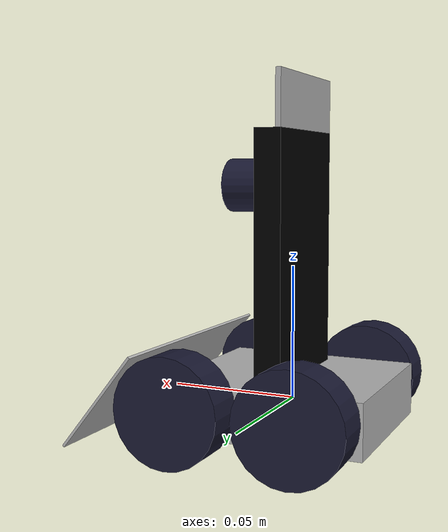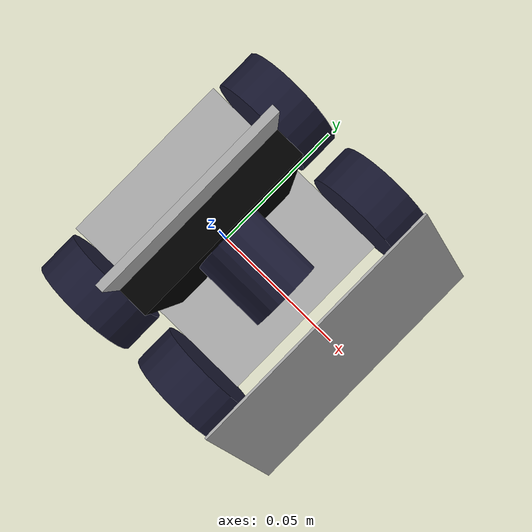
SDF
<?xml version="1.0" ?>
<sdf version="1.5">

  <model name="pushbot">
    <pose>0 0 0 0 0 0</pose>
    <static>false</static>

    <!-- Body: Main Chassis -->
    <link name="chassis">
      <pose>0 0 0 0 0 0</pose>
      <inertial>
        <mass>130</mass>
        <!-- for a box: ixx = 0.083 * mass * (y*y + z*z)
                        iyy = 0.083 * mass * (x*x + z*z)
                        izz = 0.083 * mass * (x*x + y*y) -->
        <inertia>
          <ixx>1</ixx>
          <ixy>0</ixy>
          <ixz>0</ixz>
          <iyy>1</iyy>
          <iyz>0</iyz>
          <izz>1</izz>
        </inertia>
      </inertial>
      <collision name="collision">
        <geometry>
          <box>
            <size>0.075 0.065 0.02</size>
          </box>
        </geometry>
      </collision>
      <visual name="chassis">
        <geometry>
          <box>
            <size>0.075 0.065 0.02</size>
          </box>
        </geometry>
      </visual>
    </link>

    <!-- Body: Vertical controller PCB -->
    <link name="top">
      <pose>0 0 0.055 0 0 0</pose>
      <inertial>
        <mass>60</mass>
        <!-- for a box: ixx = 0.083 * mass * (y*y + z*z)
                        iyy = 0.083 * mass * (x*x + z*z)
                        izz = 0.083 * mass * (x*x + y*y) -->
        <inertia>
          <ixx>1</ixx>
          <ixy>0.0</ixy>
          <ixz>0.0</ixz>
          <iyy>1</iyy>
          <iyz>0.0</iyz>
          <izz>1</izz>
        </inertia>
      </inertial>
      <collision name="collision">
        <geometry>
          <box>
            <size>0.01 0.05 0.09</size>
          </box>
        </geometry>
      </collision>
      <visual name="top">
        <geometry>
          <box>
            <size>0.01 0.05 0.09</size>
          </box>
        </geometry>
        <material>
          <ambient>0 0 0 1</ambient>
          <diffuse>0 0 0 1</diffuse>
          <specular>0 0 0 1</specular>
          <emissive>0 1 0.5 1</emissive>
        </material>
      </visual>
    </link>

    <joint name="chassis2top" type="fixed">
      <parent>chassis</parent>
      <child>top</child>
    </joint>

    <!-- Body: Top LED PCB -->
    <link name="led_top">
      <pose> -0.004 0 0.11 0 0 0</pose>
      <collision name="collision">
        <geometry>
          <box>
            <size>0.002 0.05 0.02</size>
          </box>
        </geometry>
      </collision>
      <visual name="led_top">
        <geometry>
          <box>
            <size>0.002 0.05 0.02</size>
          </box>
        </geometry>
      </visual>
    </link>

    <joint name="led_top_joint" type="fixed">
      <parent>top</parent>
      <child>led_top</child>
    </joint>

    <!-- Body: Front Plate -->
    <link name="front">
      <pose> 0.055 0 0.004 0 0 0</pose>
      <inertial>
        <mass>10</mass>
        <inertia>
          <ixx>1</ixx>
          <ixy>0.0</ixy>
          <ixz>0.0</ixz>
          <iyy>1</iyy>
          <iyz>0.0</iyz>
          <izz>1</izz>
        </inertia>
      </inertial>
      <collision name="collision">
        <pose>0 0 0 0 -0.68 0</pose>
        <geometry>
          <box>
            <size>0.001 0.1 0.045</size>
          </box>
        </geometry>
      </collision>
      <visual name="front">
        <pose>0 0 0 0 -0.68 0</pose>
        <geometry>
          <box>
            <size>0.001 0.1 0.045</size>
          </box>
        </geometry>
      </visual>
    </link>

    <joint name="chassis2front" type="fixed">
      <parent>chassis</parent>
      <child>front</child>
    </joint>

    <!-- Back Left Wheel -->
    <link name="back_left_wheel">
      <pose> -0.0175 0.0425 0.003 0 0 0</pose>
      <inertial>
        <mass>25</mass>-->
        <!-- for a solid cylinder, along y-axis: ixx = izz = 0.083 * mass * (3*r*r + l*l)
                                                 iyy = 0.5 * mass * r*r -->
        <inertia>
          <ixx>1</ixx>
          <ixy>0</ixy>
          <ixz>0</ixz>
          <iyy>1</iyy>
          <iyz>0</iyz>
          <izz>1</izz>
        </inertia>
      </inertial>
      <collision name="collision">
        <pose>0 0 0 -1.5707 0 0</pose>
        <geometry>
          <cylinder>
            <radius>0.02</radius>
            <length>0.015</length>
          </cylinder>
        </geometry>
        <surface>
          <friction>
            <ode>
              <mu>1.0</mu>
              <mu2>1.0</mu2>
              <slip1>0.0</slip1>
              <slip2>0.0</slip2>
            </ode>
          </friction>
        </surface>
      </collision>
      <visual name="back_left_wheel">
        <pose>0 0 0 -1.5707 0 0</pose>
        <geometry>
          <cylinder>
            <radius>0.02</radius>
            <length>0.015</length>
          </cylinder>
        </geometry>
        <material>
          <ambient>0.1 0.1 0.1 1</ambient>
          <diffuse>0.1 0.1 0.2 1</diffuse>
          <specular>0 0 0 0</specular>
          <emissive>0 0 0 1</emissive>
        </material>
      </visual>
    </link>

    <joint name="back_left_joint" type="revolute">
      <parent>chassis</parent>
      <child>back_left_wheel</child>
      <axis>
      <xyz>0 1 0</xyz>
      </axis>
    </joint>

    <!-- Back Right Wheel -->
    <link name="back_right_wheel">
      <pose> -0.0175 -0.0425 0.003 0 0 0</pose>
      <inertial>
        <mass>25</mass>
        <!-- for a solid cylinder, along y-axis: ixx = izz = 0.083 * mass * (3*r*r + l*l)
                                                 iyy = 0.5 * mass * r*r -->
        <inertia>
          <ixx>1</ixx>
          <ixy>0</ixy>
          <ixz>0</ixz>
          <iyy>1</iyy>
          <iyz>0</iyz>
          <izz>1</izz>
        </inertia>
      </inertial>
      <collision name="collision">
        <pose>0 0 0 -1.5707 0 0</pose>
        <geometry>
          <cylinder>
            <radius>0.02</radius>
            <length>0.015</length>
          </cylinder>
        </geometry>
        <surface>
          <friction>
            <ode>
              <mu>1.0</mu>
              <mu2>1.0</mu2>
              <slip1>0.0</slip1>
              <slip2>0.0</slip2>
            </ode>
          </friction>
        </surface>
      </collision>
      <visual name="back_right_wheel">
        <pose>0 0 0 -1.5707 0 0</pose>
        <geometry>
          <cylinder>
            <radius>0.02</radius>
            <length>0.015</length>
          </cylinder>
        </geometry>
        <material>
          <ambient>0.1 0.1 0.1 1</ambient>
          <diffuse>0.1 0.1 0.2 1</diffuse>
          <specular>0 0 0 0</specular>
          <emissive>0 0 0 1</emissive>
        </material>
      </visual>
    </link>

    <joint name="back_right_joint" type="revolute">
      <parent>chassis</parent>
      <child>back_right_wheel</child>
      <axis>
      <xyz>0 1 0</xyz>
      </axis>
    </joint>

    <!-- Front Left Wheel -->
    <link name="front_left_wheel">
      <pose> 0.0275 0.0425 0.003 0 0 0</pose>
      <inertial>
        <mass>25</mass>
        <!-- for a solid cylinder, along y-axis: ixx = izz = 0.083 * mass * (3*r*r + l*l)
                                                 iyy = 0.5 * mass * r*r -->
        <inertia>
          <ixx>1</ixx>
          <ixy>0</ixy>
          <ixz>0</ixz>
          <iyy>1</iyy>
          <iyz>0</iyz>
          <izz>1</izz>
        </inertia>
      </inertial>
      <collision name="collision">
        <pose>0 0 0 -1.5707 0 0</pose>
        <geometry>
          <cylinder>
            <radius>0.02</radius>
            <length>0.015</length>
          </cylinder>
        </geometry>
        <surface>
          <friction>
            <ode>
              <mu>1.0</mu>
              <mu2>1.0</mu2>
              <slip1>0.0</slip1>
              <slip2>0.0</slip2>
            </ode>
          </friction>
        </surface>
      </collision>
      <visual name="front_left_wheel">
        <pose>0 0 0 -1.5707 0 0</pose>
        <geometry>
          <cylinder>
            <radius>0.02</radius>
            <length>0.015</length>
          </cylinder>
        </geometry>
        <material>
          <ambient>0.1 0.1 0.1 1</ambient>
          <diffuse>0.1 0.1 0.2 1</diffuse>
          <specular>0 0 0 0</specular>
          <emissive>0 0 0 1</emissive>
        </material>
      </visual>
    </link>

    <joint name="front_left_joint" type="revolute">
      <parent>chassis</parent>
      <child>front_left_wheel</child>
      <axis>
      <xyz>0 1 0</xyz>
      </axis>
    </joint>

    <!-- Front Right Wheel -->
    <link name="front_right_wheel">
      <pose> 0.0275 -0.0425 0.003 0 0 0</pose>
      <inertial>
        <mass>25</mass>
        <!-- for a solid cylinder, along y-axis: ixx = izz = 0.083 * mass * (3*r*r + l*l)
                                                 iyy = 0.5 * mass * r*r -->
        <inertia>
          <ixx>1</ixx>
          <ixy>0</ixy>
          <ixz>0</ixz>
          <iyy>1</iyy>
          <iyz>0</iyz>
          <izz>1</izz>
        </inertia>
      </inertial>
      <collision name="collision">
        <pose>0 0 0 -1.5707 0 0</pose>
        <geometry>
          <cylinder>
            <radius>0.02</radius>
            <length>0.015</length>
          </cylinder>
        </geometry>
        <surface>
          <friction>
            <ode>
              <mu>1.0</mu>
              <mu2>1.0</mu2>
              <slip1>0.0</slip1>
              <slip2>0.0</slip2>
            </ode>
          </friction>
        </surface>
      </collision>
      <visual name="front_right_wheel">
        <pose>0 0 0 -1.5707 0 0</pose>
        <geometry>
          <cylinder>
            <radius>0.02</radius>
            <length>0.015</length>
          </cylinder>
        </geometry>
        <material>
          <ambient>0.1 0.1 0.1 1</ambient>
          <diffuse>0.1 0.1 0.2 1</diffuse>
          <specular>0 0 0 0</specular>
          <emissive>0 0 0 1</emissive>
        </material>
      </visual>
    </link>

    <joint name="front_right_joint" type="revolute">
      <parent>chassis</parent>
      <child>front_right_wheel</child>
      <axis>
      <xyz>0 1 0</xyz>
      </axis>
    </joint>

    <!-- Actuators: Wheel Controllers -->
    <plugin name="generic_controller" filename="libgeneric_controller_plugin.so">
      <controller joint_name="back_left_joint">
        <type>velocity</type>
        <pid>10.0 0.1 0.1</pid>
      </controller>
      <controller joint_name="back_right_joint">
        <type>velocity</type>
        <pid>10.0 0.1 0.1</pid>
      </controller>
      <controller joint_name="front_left_joint">
        <type>velocity</type>
        <pid>10.0 0.1 0.1</pid>
      </controller>
      <controller joint_name="front_right_joint">
        <type>velocity</type>
        <pid>10.0 0.1 0.1</pid>
      </controller>
   </plugin>

    <!-- Sensor: DVS Event Camera -->
    <link name='dvs_camera'>
      <pose>0.015 0 0.08 0 1.5708 0</pose>
      <collision name="collision">
        <geometry>
          <cylinder>
            <radius>0.01</radius>
            <length>0.02</length>
          </cylinder>
        </geometry>
      </collision>
      <visual name="dvs_camera">
        <geometry>
          <cylinder>
            <radius>0.01</radius>
            <length>0.02</length>
          </cylinder>
        </geometry>
        <material>
          <ambient>0.1 0.1 0.1 1</ambient>
          <diffuse>0.1 0.1 0.2 1</diffuse>
          <specular>0 0 0 0</specular>
          <emissive>0 0 0 1</emissive>
        </material>
      </visual>
      <gravity>1</gravity>
      <velocity_decay/>
      <self_collide>0</self_collide>
      <sensor name='sensor' type='camera'>
        <pose frame=''>0 0 0.011 0 -1.5708 0</pose>
        <visualize>1</visualize>
        <camera name='dvs_camera'>
          <horizontal_fov>1.047</horizontal_fov>
          <image>
            <width>128</width>
            <height>128</height>
          </image>
          <clip>
            <near>0.1</near>
            <far>100</far>
          </clip>
        </camera>
        <always_on>1</always_on>
        <update_rate>60</update_rate>
        <plugin name='camera_controller' filename='libgazebo_dvs_plugin.so'>
          <cameraName>dvs</cameraName>
          <robotNamespace>pushbot</robotNamespace>
          <eventThreshold>5</eventThreshold>
          <cameraInfoTopicName>camera_info</cameraInfoTopicName>
        </plugin>
      </sensor>
    </link>

    <joint name='dvs_camera_joint' type='fixed'>
      <parent>top</parent>
      <child>dvs_camera</child>
    </joint>

    <!-- Elements below require additional work -->

  </model>
</sdf>
